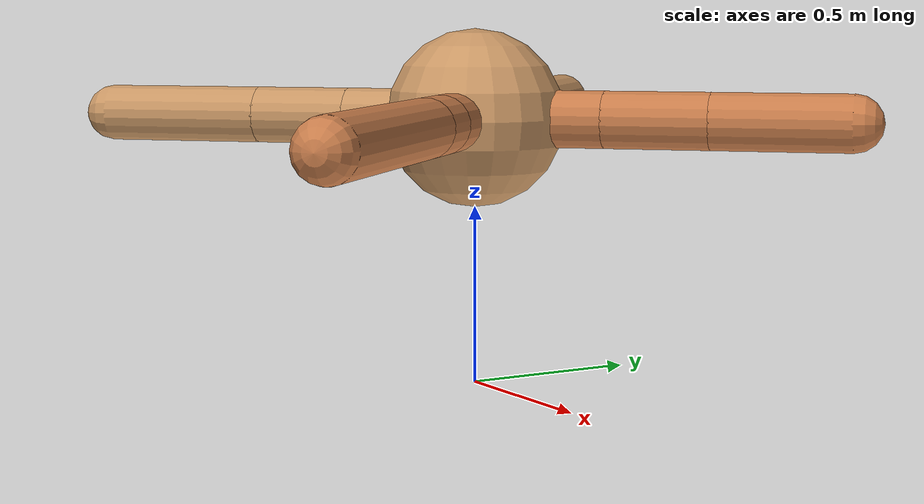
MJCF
<mujoco model="ant">
  <compiler angle="degree" coordinate="local" inertiafromgeom="true" />
  <option integrator="RK4" timestep="0.01" />
  <custom>
    <numeric data="0.0 0.0 0.55 1.0 0.0 0.0 0.0 0.0 1.0 0.0 -1.0 0.0 -1.0 0.0 1.0" name="init_qpos" />
  </custom>
  <default>
    <joint armature="1" damping="1" limited="true" />
    <geom conaffinity="0" condim="3" density="5.0" friction="1.5 0.1 0.1" margin="0.01" rgba="0.8 0.6 0.4 1" />
  </default>
  <worldbody>
    <body name="torso" pos="0 0 0.75">
      <geom name="torso_geom" pos="0 0 0" size="0.25" type="sphere" />

      <body name="front_left_leg" pos="0 0 0">
        <geom fromto="0.0 0.0 0.0 0.26028096837268405 0.26028096837268405 0.0" name="aux_1_geom" size="0.08" type="capsule" rgba=".8 .5 .3 1" />
        <body name="aux_1" pos="0.26028096837268405 0.26028096837268405 0.0">
          <joint axis="0 0 1" name="hip_1" pos="0.0 0.0 0.0" range="-40 40" type="hinge" />
          <geom fromto="0.0 0.0 0.0 0.20744390499792342 0.20744390499792342 0.0" name="left_leg_geom" size="0.08" type="capsule" rgba=".8 .5 .3 1" />
          <body pos="0.20744390499792342 0.20744390499792342 0.0" name="front_left_foot">
            <joint axis="-1 1 0" name="ankle_1" pos="0.0 0.0 0.0" range="30 100" type="hinge" />
            <geom fromto="0.0 0.0 0.0 0.271901809354735 0.271901809354735 0.0" name="left_ankle_geom" size="0.08" type="capsule" rgba=".8 .5 .3 1" />
          </body>
        </body>
      </body>
      <body name="front_right_leg" pos="0 0 0">
        <geom fromto="0.0 0.0 0.0 -0.2678136562496343 0.2678136562496343 0.0" name="aux_2_geom" size="0.08" type="capsule" />
        <body name="aux_2" pos="-0.2678136562496343 0.2678136562496343 0.0">
          <joint axis="0 0 1" name="hip_2" pos="0.0 0.0 0.0" range="-40 40" type="hinge" />
          <geom fromto="0.0 0.0 0.0 -0.19568003864460953 0.19568003864460953 0.0" name="right_leg_geom" size="0.08" type="capsule" />
          <body pos="-0.19568003864460953 0.19568003864460953 0.0" name="front_right_foot">
            <joint axis="1 1 0" name="ankle_2" pos="0.0 0.0 0.0" range="-100 -30" type="hinge" />
            <geom fromto="0.0 0.0 0.0 -0.34768264665303317 0.34768264665303317 0.0" name="right_ankle_geom" size="0.08" type="capsule" />
          </body>
        </body>
      </body>
      <body name="left_back_leg" pos="0 0 0">
        <geom fromto="0.0 0.0 0.0 -0.2631479279887559 -0.2631479279887559 0.0" name="aux_3_geom" size="0.08" type="capsule" />
        <body name="aux_3" pos="-0.2631479279887559 -0.2631479279887559 0.0">
          <joint axis="0 0 1" name="hip_3" pos="0.0 0.0 0.0" range="-40 40" type="hinge" />
          <geom fromto="0.0 0.0 0.0 -0.19056155690715604 -0.19056155690715604 0.0" name="back_leg_geom" size="0.08" type="capsule" />
          <body pos="-0.19056155690715604 -0.19056155690715604 0.0" name="left_back_foot">
            <joint axis="-1 1 0" name="ankle_3" pos="0.0 0.0 0.0" range="-100 -30" type="hinge" />
            <geom fromto="0.0 0.0 0.0 -0.3214524503831336 -0.3214524503831336 0.0" name="third_ankle_geom" size="0.08" type="capsule" />
          </body>
        </body>
      </body>
      <body name="right_back_leg" pos="0 0 0">
        <geom fromto="0.0 0.0 0.0 0.24430435655095437 -0.24430435655095437 0.0" name="aux_4_geom" size="0.08" type="capsule" rgba=".8 .5 .3 1" />
        <body name="aux_4" pos="0.24430435655095437 -0.24430435655095437 0.0">
          <joint axis="0 0 1" name="hip_4" pos="0.0 0.0 0.0" range="-40 40" type="hinge" />
          <geom fromto="0.0 0.0 0.0 0.10477986974033152 -0.10477986974033152 0.0" name="rightback_leg_geom" size="0.08" type="capsule" rgba=".8 .5 .3 1" />
          <body pos="0.10477986974033152 -0.10477986974033152 0.0" name="right_back_foot">
            <joint axis="1 1 0" name="ankle_4" pos="0.0 0.0 0.0" range="30 100" type="hinge" />
            <geom fromto="0.0 0.0 0.0 0.550789586077148 -0.550789586077148 0.0" name="fourth_ankle_geom" size="0.08" type="capsule" rgba=".8 .5 .3 1" />
          </body>
        </body>
      </body>
    </body>
  </worldbody>
  <actuator>
    <motor ctrllimited="true" ctrlrange="-1.0 1.0" joint="hip_4" gear="150" />
    <motor ctrllimited="true" ctrlrange="-1.0 1.0" joint="ankle_4" gear="150" />
    <motor ctrllimited="true" ctrlrange="-1.0 1.0" joint="hip_1" gear="150" />
    <motor ctrllimited="true" ctrlrange="-1.0 1.0" joint="ankle_1" gear="150" />
    <motor ctrllimited="true" ctrlrange="-1.0 1.0" joint="hip_2" gear="150" />
    <motor ctrllimited="true" ctrlrange="-1.0 1.0" joint="ankle_2" gear="150" />
    <motor ctrllimited="true" ctrlrange="-1.0 1.0" joint="hip_3" gear="150" />
    <motor ctrllimited="true" ctrlrange="-1.0 1.0" joint="ankle_3" gear="150" />
  </actuator>
</mujoco>
